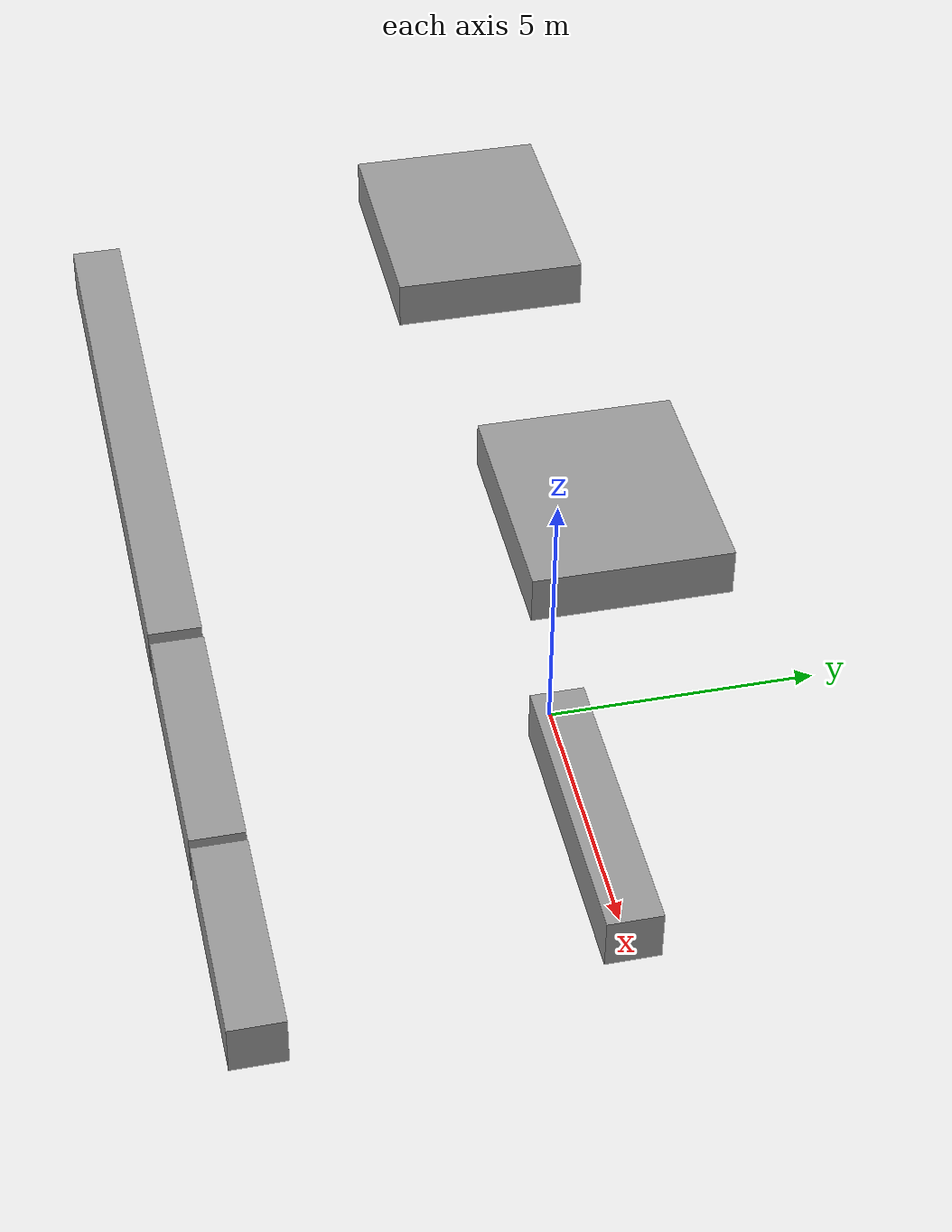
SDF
<sdf version="1.7">
 <world name="default">
  <light name="sun" type="directional">
   <pose>0 0 10 0 -0 0</pose>
   <diffuse>0.8 0.8 0.8 1</diffuse>
   <specular>0.2 0.2 0.2 1</specular>
   <attenuation>
    <range>1000</range>
    <constant>0.9</constant>
    <linear>0.01</linear>
    <quadratic>0.001</quadratic>
   </attenuation>
   <direction>-0.5 0.1 -0.9</direction>
   <spot><inner_angle>0</inner_angle><outer_angle>0</outer_angle><falloff>0</falloff></spot>
  </light>
  <model name="ground_plane">
   <static>1</static>
   <link name="link">
    <collision name="collision">
     <geometry><plane><normal>0 0 1</normal><size>100 100</size></plane></geometry>
     <surface><friction><ode><mu>100</mu><mu2>50</mu2></ode></friction></surface>
    </collision>
    <visual name="visual">
     <cast_shadows>0</cast_shadows>
     <geometry><plane><normal>0 0 1</normal><size>100 100</size></plane></geometry>
     <material>
      <script><uri>file://media/materials/scripts/gazebo.material</uri><name>Gazebo/Grey</name></script>
     </material>
    </visual>
   </link>
  </model>
  <physics type="ode">
   <real_time_update_rate>1000</real_time_update_rate>
   <max_step_size>0.001</max_step_size>
   <real_time_factor>1</real_time_factor>
   <ode>
    <solver>
     <type>quick</type>
     <iters>150</iters>
     <precon_iters>0</precon_iters>
     <sor>1.4</sor>
     <use_dynamic_moi_rescaling>1</use_dynamic_moi_rescaling>
    </solver>
    <constraints>
     <cfm>0</cfm>
     <erp>0.2</erp>
     <contact_max_correcting_vel>100</contact_max_correcting_vel>
     <contact_surface_layer>0.001</contact_surface_layer>
    </constraints>
   </ode>
  </physics>
  <model name="unit_box">
   <pose>-5.41542 1.14198 -5999.4 2.0508 -0 0</pose>
   <link name="link">
    <inertial>
     <mass>1</mass>
     <inertia>
      <ixx>0.166667</ixx>
      <ixy>0</ixy>
      <ixz>0</ixz>
      <iyy>0.166667</iyy>
      <iyz>0</iyz>
      <izz>0.166667</izz>
     </inertia>
    </inertial>
    <collision name="collision"><geometry><box><size>4.71196 0 1</size></box></geometry></collision>
    <visual name="visual">
     <geometry><box><size>4.71196 0 1</size></box></geometry>
     <material>
      <script><name>Gazebo/Grey</name><uri>file://media/materials/scripts/gazebo.material</uri></script>
     </material>
    </visual>
   </link>
  </model>
  <model name="unit_box_0">
   <pose>3.15826 -0.00021 0.496731 0 -0.001189 0</pose>
   <link name="link">
    <inertial>
     <mass>1</mass>
     <inertia>
      <ixx>0.166667</ixx>
      <ixy>0</ixy>
      <ixz>0</ixz>
      <iyy>0.166667</iyy>
      <iyz>0</iyz>
      <izz>0.166667</izz>
     </inertia>
    </inertial>
    <collision name="collision"><geometry><box><size>5.5 1 1</size></box></geometry></collision>
    <visual name="visual">
     <geometry><box><size>5.5 1 1</size></box></geometry>
     <material>
      <script><name>Gazebo/Grey</name><uri>file://media/materials/scripts/gazebo.material</uri></script>
     </material>
    </visual>
   </link>
  </model>
  <model name="unit_box4">
   <pose>-8.62021 -6.50018 0.497302 0 -0.000445 2e-05</pose>
   <link name="link">
    <inertial>
     <mass>1</mass>
     <inertia><ixx>0.166667</ixx><ixy>0</ixy><ixz>0</ixz><iyy>1</iyy><iyz>0</iyz><izz>0.166667</izz></inertia>
    </inertial>
    <collision name="collision"><geometry><box><size>12.1249 1 1</size></box></geometry></collision>
    <visual name="visual">
     <geometry><box><size>12.1249 1 1</size></box></geometry>
     <material>
      <script><name>Gazebo/Grey</name><uri>file://media/materials/scripts/gazebo.material</uri></script>
     </material>
    </visual>
   </link>
  </model>
  <model name="unit_box1">
   <pose>0.161169 -6.49999 0.5 0 -0 0</pose>
   <link name="link">
    <inertial>
     <mass>1</mass>
     <inertia><ixx>0.166667</ixx><ixy>0</ixy><ixz>0</ixz><iyy>1</iyy><iyz>0</iyz><izz>0.166667</izz></inertia>
    </inertial>
    <collision name="collision"><geometry><box><size>4.95 1 1</size></box></geometry></collision>
    <visual name="visual">
     <geometry><box><size>4.95 1 1</size></box></geometry>
     <material>
      <script><name>Gazebo/Grey</name><uri>file://media/materials/scripts/gazebo.material</uri></script>
     </material>
    </visual>
   </link>
  </model>
  <model name="unit_box2">
   <pose>4.80801 -6.5 0.499253 0 -0.000373 0</pose>
   <link name="link">
    <inertial>
     <mass>1</mass>
     <inertia>
      <ixx>0.166667</ixx>
      <ixy>0</ixy>
      <ixz>0</ixz>
      <iyy>0.166667</iyy>
      <iyz>0</iyz>
      <izz>0.166667</izz>
     </inertia>
    </inertial>
    <collision name="collision"><geometry><box><size>4 1 1</size></box></geometry></collision>
    <visual name="visual">
     <geometry><box><size>4 1 1</size></box></geometry>
     <material>
      <script><name>Gazebo/Grey</name><uri>file://media/materials/scripts/gazebo.material</uri></script>
     </material>
    </visual>
   </link>
  </model>
  <gravity>0 0 -9.8</gravity>
  <magnetic_field>6e-06 2.3e-05 -4.2e-05</magnetic_field>
  <atmosphere type="adiabatic"/>
  <scene><ambient>0.4 0.4 0.4 1</ambient><background>0.7 0.7 0.7 1</background><shadows>1</shadows></scene>
  <audio><device>default</device></audio>
  <spherical_coordinates>
   <surface_model>EARTH_WGS84</surface_model>
   <latitude_deg>0</latitude_deg>
   <longitude_deg>0</longitude_deg>
   <elevation>0</elevation>
   <heading_deg>0</heading_deg>
  </spherical_coordinates>
  <model name="unit_box_clone">
   <pose>-14.4189 1.61567 0.499284 -0.000361 -0 -1.3e-05</pose>
   <link name="link">
    <inertial>
     <mass>1</mass>
     <inertia>
      <ixx>0.166667</ixx>
      <ixy>0</ixy>
      <ixz>0</ixz>
      <iyy>0.166667</iyy>
      <iyz>0</iyz>
      <izz>0.166667</izz>
     </inertia>
    </inertial>
    <collision name="collision"><geometry><box><size>4.71196 3.96508 1</size></box></geometry></collision>
    <visual name="visual">
     <geometry><box><size>4.71196 3.96508 1</size></box></geometry>
     <material>
      <script><name>Gazebo/Grey</name><uri>file://media/materials/scripts/gazebo.material</uri></script>
     </material>
    </visual>
   </link>
  </model>
  <model name="unit_box_clone_clone">
   <pose>-4.87081 2.22821 0.499284 -0.000361 -0 -1.3e-05</pose>
   <link name="link">
    <inertial>
     <mass>1</mass>
     <inertia>
      <ixx>0.166667</ixx>
      <ixy>0</ixy>
      <ixz>0</ixz>
      <iyy>0.166667</iyy>
      <iyz>0</iyz>
      <izz>0.166667</izz>
     </inertia>
    </inertial>
    <collision name="collision"><geometry><box><size>4.71196 3.96508 1</size></box></geometry></collision>
    <visual name="visual">
     <geometry><box><size>4.71196 3.96508 1</size></box></geometry>
     <material>
      <script><name>Gazebo/Grey</name><uri>file://media/materials/scripts/gazebo.material</uri></script>
     </material>
    </visual>
   </link>
  </model>
 </world>
</sdf>
